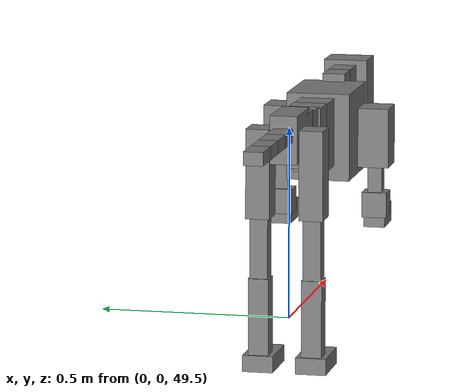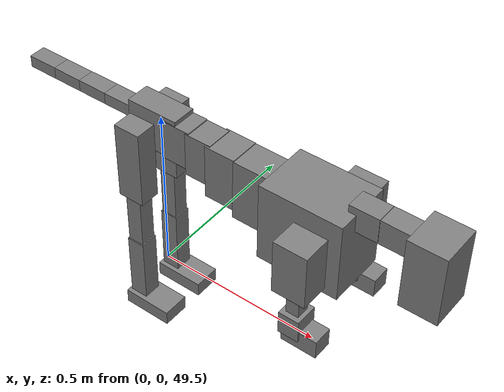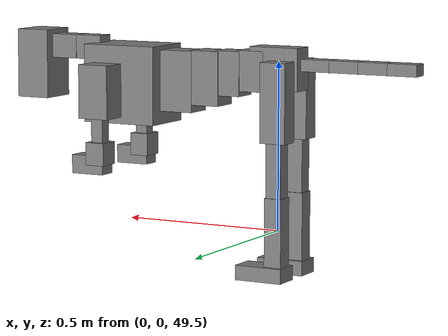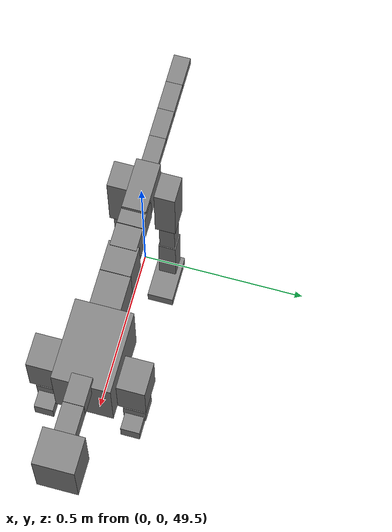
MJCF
<mujoco model="dog">

    <default>
        <joint armature="0.02" stiffness="1" damping="0.2" limited="true"/>
        <geom condim="3" friction="1 0.05 0.05" margin="0.01"/>
        <motor ctrllimited="true" ctrlrange="-1.0 1.0" forcelimited="true" gear="50"/>
    </default>

    <compiler inertiafromgeom="true" angle="radian"/>

    <option timestep="0.016" iterations="50" tolerance="1e-10" solver="Newton" jacobian="dense" cone="pyramidal"/>

    <size nconmax="20000" njmax="60000" nstack="5000000"/>
    <visual>
        <map force="0.1" zfar="30"/>
        <rgba haze="0.15 0.25 0.35 1"/>
        <quality shadowsize="2048"/>
        <global offwidth="800" offheight="800"/>
    </visual>

    <asset>
        <texture type="skybox" builtin="gradient" rgb1="0.3 0.5 0.7" rgb2="0 0 0" width="512" height="512"/>
        <texture name="texplane" type="2d" builtin="checker" rgb1=".2 .3 .4" rgb2=".1 0.15 0.2" width="512" height="512"
                 mark="cross" markrgb=".8 .8 .8"/>
        <texture name="texgeom" type="cube" builtin="flat" mark="cross" width="127" height="1278" rgb1="0.8 0.6 0.4"
                 rgb2="0.8 0.6 0.4" markrgb="1 1 1" random="0.01"/>

        <material name="matplane" reflectance="0.3" texture="texplane" texrepeat="1 1" texuniform="true"/>
        <material name="matgeom" texture="texgeom" texuniform="true" rgba="0.8 0.6 .4 1"/>
    </asset>

    <worldbody>
        <geom name="floor" pos="0 0 0" size="0 0 .25" type="plane" material="matplane" condim="3"/>

        <light directional="false" diffuse=".2 .2 .2" specular="0 0 0" pos="0 0 5" dir="0 0 -1" castshadow="false"/>
        <light mode="targetbodycom" target="torso" directional="false" diffuse=".8 .8 .8" specular="0.3 0.3 0.3"
               pos="0 0 4.0" dir="0 0 -1"/>

        <body name="root" pos="0 0 50">
            <freejoint name="root_1"/>
            <geom type="box" pos="0 0 -0.02" size="0.0774  0.0358  0.063" density="2030"/>

            <body name="spine1" pos="0.054 0 0">
                <joint name="spine1_y" axis="0 1 0" range="0 0.7" limited="true"/>
                <geom type="box" pos="0.02375 0 -0.03" size="0.04375  0.0375  0.05985" density="2030"/>

                <body name="spine2" pos="0.0612 0 0">
                    <joint name="spine2_y" axis="0 1 0" range="-0.15 0.15" limited="true"/>
                    <geom type="box" pos="0.03555  0  -0.04" size="0.04055  0.039  0.06615" density="2030"/>

                    <body name="spine3" pos="0.0730 0 0">
                        <joint name="spine3_y" axis="0 1 0" range="-0.15 0.15" limited="true"/>
                        <geom type="box" pos="0.03555  0  -0.057" size="0.04555  0.0445  0.081" density="2030"/>

                        <body name="spine4" pos="0.0780 0 0">
                            <joint name="spine4_y" axis="0 1 0" range="-0.15 0.15" limited="true"/>
                            <geom type="box" pos="0.05265  0  -0.07" size="0.05265  0.045  0.09135" density="2030"/>

                            <body name="torso" pos="0.1082 0 0">
                                <joint name="torso_y" axis="0 1 0" range="-0.15 0.15" limited="true"/>
                                <geom type="box" pos="0.11925  0  -0.085" size="0.11925  0.085  0.11745"
                                      density="2030"/>

                                <body name="neck1" pos="0.2160  0   0.0180">
                                    <joint name="neck1_y" axis="0 1 0" range="-1.2  -1" limited="true"/>
                                    <geom type="box" pos="0.0423  0  0" size="0.0423  0.03  0.036" density="2325"/>

                                    <body name="neck2" pos="0.0853  0  0">
                                        <joint name="neck2_y" axis="0 1 0" range="0.1  0" limited="true"/>
                                        <geom type="box" pos="0.0423  0  0" size="0.0423  0.03  0.036" density="2325"/>

                                        <body name="head" pos="0.0853  0  0">
                                            <joint name="head_y" axis="0 1 0" range="-0.3  -0.2" limited="true"/>
                                            <geom type="box" pos="0.0531  0  -0.055" size="0.0531  0.06  0.1044"
                                                  density="4030"/>

                                        </body>
                                    </body>
                                </body>

                                <body name="front_shoulder" pos="0.156  0   -0.0480">
                                    <joint name="front_shoulder_y" axis="0 1 0" range="-1 1.5" limited="true"/>
                                    <geom type="box" pos="0 0.13 -0.0537" size="0.0485  0.0414  0.0804" density="1158"/>
                                    <geom type="box" pos="0 -0.13 -0.0537" size="0.0485  0.0414  0.0804"
                                          density="1158"/>

                                    <body name="front_elbow" pos="0  0  -0.1075">
                                        <joint name="front_elbow_y" axis="0 1 0" range="-2 0" limited="true"/>
                                        <geom type="box" pos="0 0.13 -0.0560" size="0.0187  0.0191  0.0560"
                                              density="1081"/>
                                        <geom type="box" pos="0 -0.13 -0.0560" size="0.0187  0.0191  0.0560"
                                              density="1081"/>

                                        <body name="front_wrist" pos="0  0  -0.1119">
                                            <joint name="front_wrist_y" axis="0 1 0" range="-0.2 0" limited="true"/>
                                            <geom type="box" pos="0 0.13 -0.0208" size="0.0302  0.0336  0.0340"
                                                  density="1664"/>
                                            <geom type="box" pos="0 -0.13 -0.0208" size="0.0302  0.0336  0.0340"
                                                  density="1664"/>

                                            <body name="front_finger_end" pos="0  0  -0.0416">
                                                <joint name="front_finger_y" axis="0 1 0" range="-0.4 1"
                                                       limited="true"/>
                                                <geom type="box" pos="0.0285  0.13  -0.0129"
                                                      size="0.0522  0.0285  0.0279" density="1515"/>
                                                <geom type="box" pos="0.0285  -0.13  -0.0129"
                                                      size="0.0522  0.0285  0.0279" density="1515"/>

                                            </body>

                                        </body>
                                    </body>
                                </body>

                            </body>
                        </body>
                    </body>
                </body>
            </body>

            <body name="back_hip" pos="-0.03 0 -0.018">
                <joint name="back_hip_y" axis="0 1 0" range="-1.5 0.3" limited="true"/>
                <geom type="box" pos="0 0.07 -0.0943" size="0.0396  0.0310  0.1171" density="1154"/>
                <geom type="box" pos="0 -0.07 -0.0943" size="0.0396  0.0310  0.1171" density="1154"/>

                <body name="back_knee" pos="0  0  -0.1887">
                    <joint name="back_knee_y" axis="0 1 0" range="0 2.8" limited="true"/>
                    <geom type="box" pos="0 0.07 -0.0966" size="0.0239  0.0236  0.1121" density="1227"/>
                    <geom type="box" pos="0 -0.07 -0.0966" size="0.0239  0.0236  0.1121" density="1227"/>

                    <body name="back_ankle" pos="0  0  -0.1932">
                        <joint name="back_ankle_y" axis="0 1 0" range="-2.2 0" limited="true"/>
                        <geom type="box" pos="0 0.07 -0.1029" size="0.0267  0.0267  0.1141" density="1284"/>
                        <geom type="box" pos="0 -0.07 -0.1029" size="0.0267  0.0267  0.1141" density="1284"/>

                        <body name="back_toe_end" pos="0  0  -0.2057">
                            <joint name="back_toe_y" axis="0 1 0" range="-0.4 1" limited="true"/>
                            <geom type="box" pos="0.0401  0.07  -0.0068" size="0.0735  0.0401  0.0218" density="1515"/>
                            <geom type="box" pos="0.0401  -0.07  -0.0068" size="0.0735  0.0401  0.0218" density="1515"/>

                        </body>
                    </body>
                </body>
            </body>

            <body name="tail1" pos="-0.074 0 -0.006">
                <joint name="tail1_y" axis="0 1 0" range="-0.2 0.2" limited="true"/>
                <geom type="box" pos="-0.0536  0  0" size="0.045  0.025  0.0175" density="1587"/>

                <body name="tail2" pos="-0.09 0 0">
                    <joint name="tail2_y" axis="0 1 0" range="-0.2 0.2" limited="true"/>
                    <geom type="box" pos="-0.0536  0  0" size="0.045  0.025  0.0175" density="1587"/>

                    <body name="tail3" pos="-0.09 0 0">
                        <joint name="tail3_y" axis="0 1 0" range="-0.2 0.2" limited="true"/>
                        <geom type="box" pos="-0.0536  0  0" size="0.045  0.025  0.0175" density="1587"/>

                        <body name="tail4" pos="-0.09 0 0">
                            <joint name="tail4_y" axis="0 1 0" range="-0.2 0.2" limited="true"/>
                            <geom type="box" pos="-0.0536  0  0" size="0.045  0.025  0.0175" density="1587"/>

                        </body>
                    </body>
                </body>
            </body>
        </body>
    </worldbody>

    <actuator>
        <motor joint="spine1_y" forcerange="-150 150     "/>
        <motor joint="spine2_y" forcerange="-150 150     "/>
        <motor joint="spine3_y" forcerange="-150 150     "/>
        <motor joint="spine4_y" forcerange="-150 150     "/>
        <motor joint="torso_y" forcerange="-150 150     "/>
        <motor joint="neck1_y" forcerange="-100 100       "/>
        <motor joint="neck2_y" forcerange="-100 100       "/>
        <motor joint="head_y" forcerange="-150 150       "/>
        <motor joint="front_shoulder_y" forcerange="-183.77 192.47"/>
        <motor joint="front_elbow_y" forcerange="-120.03 118.78"/>
        <motor joint="front_wrist_y" forcerange="-140.66 128.04"/>
        <motor joint="front_finger_y" forcerange="-41.30 70.69"/>
        <motor joint="back_hip_y" forcerange="-315.82 298.14"/>
        <motor joint="back_knee_y" forcerange="-313.09 230.08"/>
        <motor joint="back_angle_y" forcerange="-147.55 179.66"/>
        <motor joint="back_toe_y" forcerange="-117.37 123.55"/>
        <motor joint="tail1_y" forcerange="-50 50     "/>
        <motor joint="tail2_y" forcerange="-50 50     "/>
        <motor joint="tail3_y" forcerange="-50 50     "/>
        <motor joint="tail4_y" forcerange="-50 50     "/>
    </actuator>
</mujoco>
